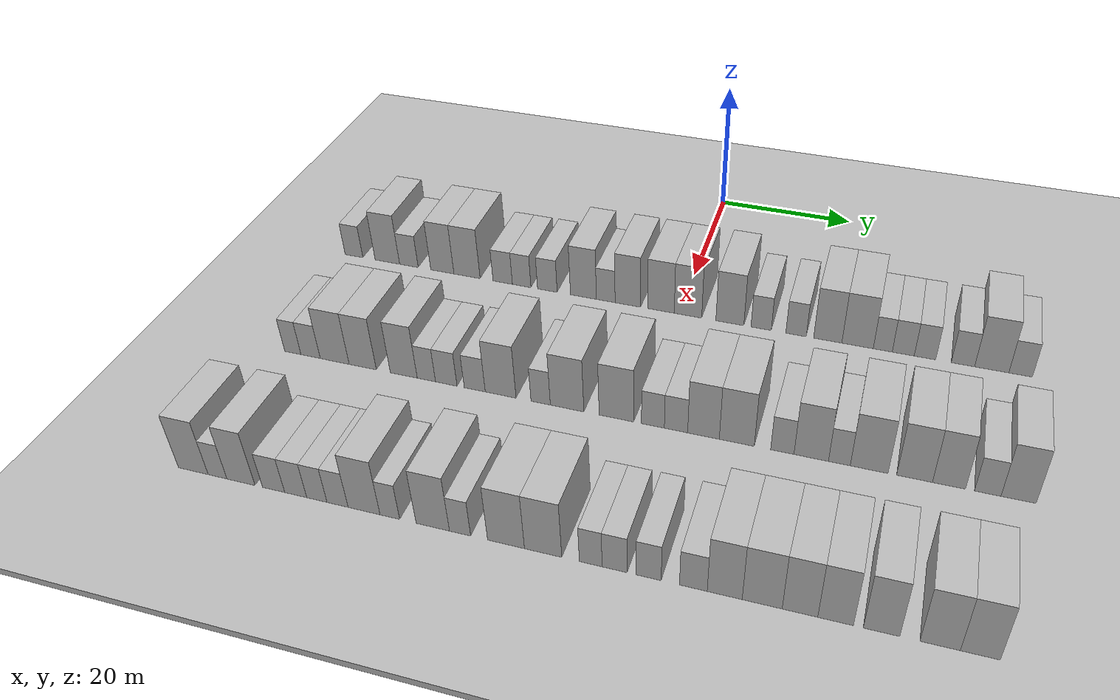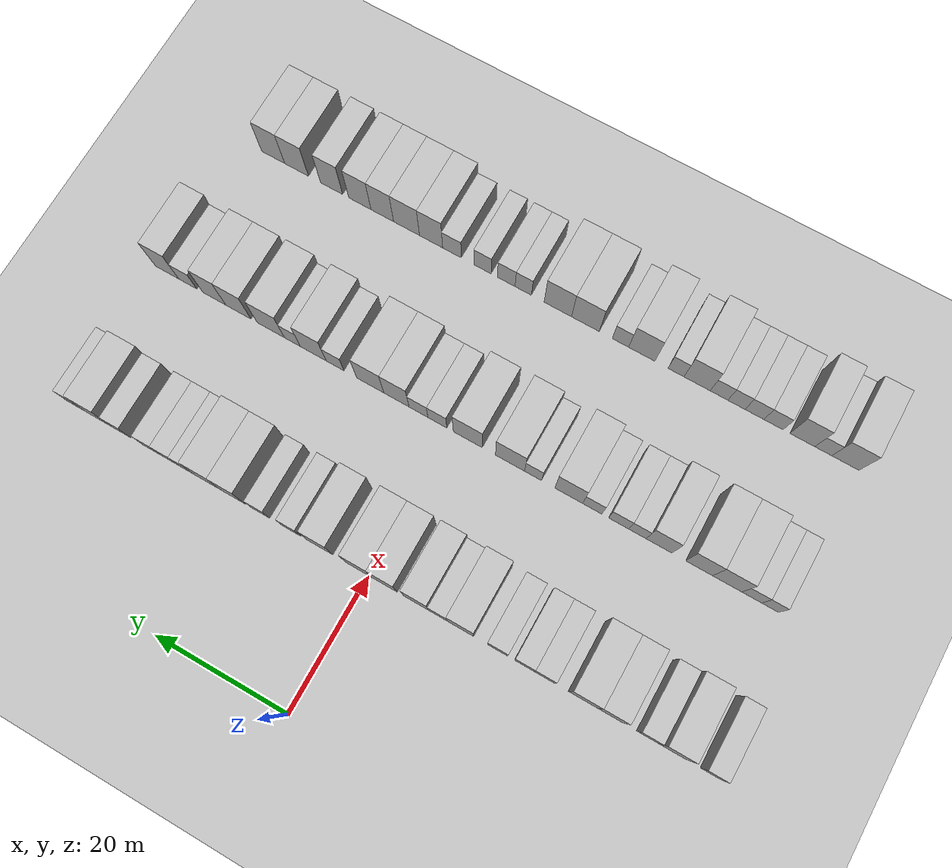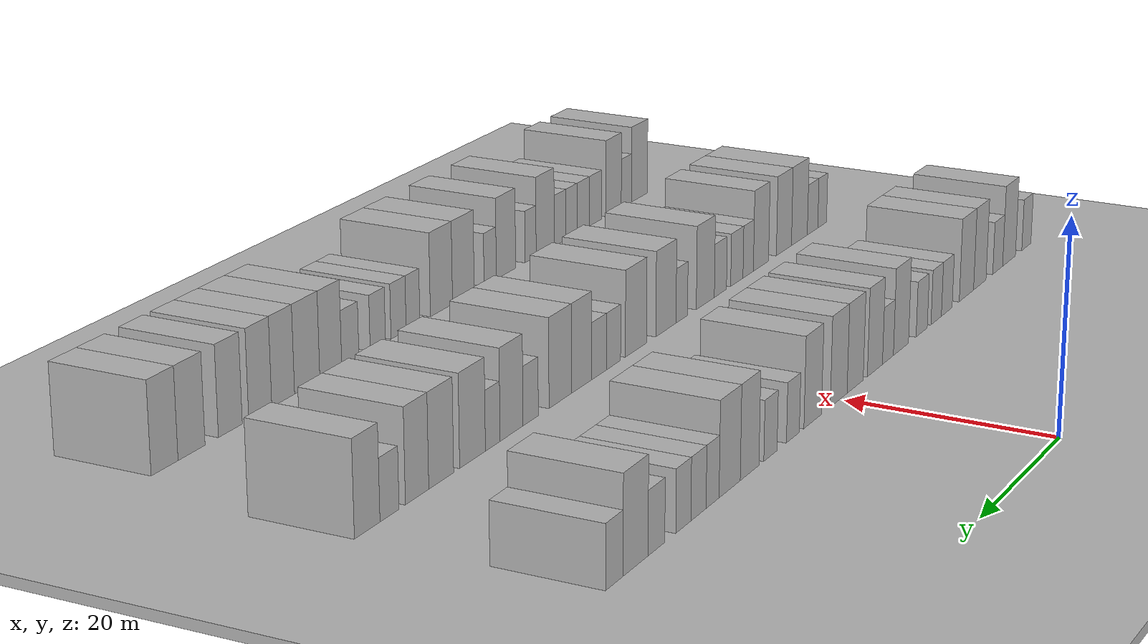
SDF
<sdf version="1.6">
 <world name="default">
  <include><name>ground_plane_1</name><uri>model://HANNAS_ground_plane</uri></include>
  <include>
   <name>ground_plane_2</name>
   <uri>model://HANNAS_ground_plane</uri>
   <pose>100 0 0  0 0 0</pose>
  </include>
  <model name="building_53">
   <static>1</static>
   <pose>25.0000 -49.5831 0 0.000000 0.000000 0.000000</pose>
   <link name="link">
    <pose>0 0 3.00 0 0 0</pose>
    <collision name="collision"><geometry><box><size>10.0000 2.9037 6.0000</size></box></geometry></collision>
    <visual name="visual">
     <cast_shadows>0</cast_shadows>
     <geometry><box><size>10.0000 2.9037 6.0000</size></box></geometry>
     <material>
      <script>
       <uri>model://HANNAS_wall/materials/scripts</uri>
       <uri>model://HANNAS_wall/materials/textures</uri>
       <name>vrc/HANNAS_wall</name>
      </script>
     </material>
    </visual>
   </link>
  </model>
  <model name="building_54">
   <static>1</static>
   <pose>25.0000 -44.1548 0 0.000000 0.000000 0.000000</pose>
   <link name="link">
    <pose>0 0 4.50 0 0 0</pose>
    <collision name="collision"><geometry><box><size>10.0000 3.9528 9.0000</size></box></geometry></collision>
    <visual name="visual">
     <cast_shadows>0</cast_shadows>
     <geometry><box><size>10.0000 3.9528 9.0000</size></box></geometry>
     <material>
      <script>
       <uri>model://HANNAS_wall/materials/scripts</uri>
       <uri>model://HANNAS_wall/materials/textures</uri>
       <name>vrc/HANNAS_wall</name>
      </script>
     </material>
    </visual>
   </link>
  </model>
  <model name="building_55">
   <static>1</static>
   <pose>25.0000 -40.6841 0 0.000000 0.000000 0.000000</pose>
   <link name="link">
    <pose>0 0 3.00 0 0 0</pose>
    <collision name="collision"><geometry><box><size>10.0000 2.9886 6.0000</size></box></geometry></collision>
    <visual name="visual">
     <cast_shadows>0</cast_shadows>
     <geometry><box><size>10.0000 2.9886 6.0000</size></box></geometry>
     <material>
      <script>
       <uri>model://HANNAS_wall/materials/scripts</uri>
       <uri>model://HANNAS_wall/materials/textures</uri>
       <name>vrc/HANNAS_wall</name>
      </script>
     </material>
    </visual>
   </link>
  </model>
  <model name="building_56">
   <static>1</static>
   <pose>25.0000 -35.3655 0 0.000000 0.000000 0.000000</pose>
   <link name="link">
    <pose>0 0 4.50 0 0 0</pose>
    <collision name="collision"><geometry><box><size>10.0000 3.6488 9.0000</size></box></geometry></collision>
    <visual name="visual">
     <cast_shadows>0</cast_shadows>
     <geometry><box><size>10.0000 3.6488 9.0000</size></box></geometry>
     <material>
      <script>
       <uri>model://HANNAS_wall/materials/scripts</uri>
       <uri>model://HANNAS_wall/materials/textures</uri>
       <name>vrc/HANNAS_wall</name>
      </script>
     </material>
    </visual>
   </link>
  </model>
  <model name="building_57">
   <static>1</static>
   <pose>25.0000 -31.4911 0 0.000000 0.000000 0.000000</pose>
   <link name="link">
    <pose>0 0 4.50 0 0 0</pose>
    <collision name="collision"><geometry><box><size>10.0000 4.1000 9.0000</size></box></geometry></collision>
    <visual name="visual">
     <cast_shadows>0</cast_shadows>
     <geometry><box><size>10.0000 4.1000 9.0000</size></box></geometry>
     <material>
      <script>
       <uri>model://HANNAS_wall/materials/scripts</uri>
       <uri>model://HANNAS_wall/materials/textures</uri>
       <name>vrc/HANNAS_wall</name>
      </script>
     </material>
    </visual>
   </link>
  </model>
  <model name="building_58">
   <static>1</static>
   <pose>25.0000 -25.9524 0 0.000000 0.000000 0.000000</pose>
   <link name="link">
    <pose>0 0 3.00 0 0 0</pose>
    <collision name="collision"><geometry><box><size>10.0000 2.9773 6.0000</size></box></geometry></collision>
    <visual name="visual">
     <cast_shadows>0</cast_shadows>
     <geometry><box><size>10.0000 2.9773 6.0000</size></box></geometry>
     <material>
      <script>
       <uri>model://HANNAS_wall/materials/scripts</uri>
       <uri>model://HANNAS_wall/materials/textures</uri>
       <name>vrc/HANNAS_wall</name>
      </script>
     </material>
    </visual>
   </link>
  </model>
  <model name="building_59">
   <static>1</static>
   <pose>25.0000 -23.0482 0 0.000000 0.000000 0.000000</pose>
   <link name="link">
    <pose>0 0 3.00 0 0 0</pose>
    <collision name="collision"><geometry><box><size>10.0000 2.8312 6.0000</size></box></geometry></collision>
    <visual name="visual">
     <cast_shadows>0</cast_shadows>
     <geometry><box><size>10.0000 2.8312 6.0000</size></box></geometry>
     <material>
      <script>
       <uri>model://HANNAS_wall/materials/scripts</uri>
       <uri>model://HANNAS_wall/materials/textures</uri>
       <name>vrc/HANNAS_wall</name>
      </script>
     </material>
    </visual>
   </link>
  </model>
  <model name="building_60">
   <static>1</static>
   <pose>25.0000 -19.1541 0 0.000000 0.000000 0.000000</pose>
   <link name="link">
    <pose>0 0 3.00 0 0 0</pose>
    <collision name="collision"><geometry><box><size>10.0000 2.9568 6.0000</size></box></geometry></collision>
    <visual name="visual">
     <cast_shadows>0</cast_shadows>
     <geometry><box><size>10.0000 2.9568 6.0000</size></box></geometry>
     <material>
      <script>
       <uri>model://HANNAS_wall/materials/scripts</uri>
       <uri>model://HANNAS_wall/materials/textures</uri>
       <name>vrc/HANNAS_wall</name>
      </script>
     </material>
    </visual>
   </link>
  </model>
  <model name="building_61">
   <static>1</static>
   <pose>25.0000 -13.7435 0 0.000000 0.000000 0.000000</pose>
   <link name="link">
    <pose>0 0 4.50 0 0 0</pose>
    <collision name="collision"><geometry><box><size>10.0000 3.8644 9.0000</size></box></geometry></collision>
    <visual name="visual">
     <cast_shadows>0</cast_shadows>
     <geometry><box><size>10.0000 3.8644 9.0000</size></box></geometry>
     <material>
      <script>
       <uri>model://HANNAS_wall/materials/scripts</uri>
       <uri>model://HANNAS_wall/materials/textures</uri>
       <name>vrc/HANNAS_wall</name>
      </script>
     </material>
    </visual>
   </link>
  </model>
  <model name="building_62">
   <static>1</static>
   <pose>25.0000 -10.4363 0 0.000000 0.000000 0.000000</pose>
   <link name="link">
    <pose>0 0 3.00 0 0 0</pose>
    <collision name="collision"><geometry><box><size>10.0000 2.7500 6.0000</size></box></geometry></collision>
    <visual name="visual">
     <cast_shadows>0</cast_shadows>
     <geometry><box><size>10.0000 2.7500 6.0000</size></box></geometry>
     <material>
      <script>
       <uri>model://HANNAS_wall/materials/scripts</uri>
       <uri>model://HANNAS_wall/materials/textures</uri>
       <name>vrc/HANNAS_wall</name>
      </script>
     </material>
    </visual>
   </link>
  </model>
  <model name="building_63">
   <static>1</static>
   <pose>25.0000 -7.2013 0 0.000000 0.000000 0.000000</pose>
   <link name="link">
    <pose>0 0 4.50 0 0 0</pose>
    <collision name="collision"><geometry><box><size>10.0000 3.7201 9.0000</size></box></geometry></collision>
    <visual name="visual">
     <cast_shadows>0</cast_shadows>
     <geometry><box><size>10.0000 3.7201 9.0000</size></box></geometry>
     <material>
      <script>
       <uri>model://HANNAS_wall/materials/scripts</uri>
       <uri>model://HANNAS_wall/materials/textures</uri>
       <name>vrc/HANNAS_wall</name>
      </script>
     </material>
    </visual>
   </link>
  </model>
  <model name="building_64">
   <static>1</static>
   <pose>25.0000 -2.4187 0 0.000000 0.000000 0.000000</pose>
   <link name="link">
    <pose>0 0 4.50 0 0 0</pose>
    <collision name="collision"><geometry><box><size>10.0000 3.8450 9.0000</size></box></geometry></collision>
    <visual name="visual">
     <cast_shadows>0</cast_shadows>
     <geometry><box><size>10.0000 3.8450 9.0000</size></box></geometry>
     <material>
      <script>
       <uri>model://HANNAS_wall/materials/scripts</uri>
       <uri>model://HANNAS_wall/materials/textures</uri>
       <name>vrc/HANNAS_wall</name>
      </script>
     </material>
    </visual>
   </link>
  </model>
  <model name="building_65">
   <static>1</static>
   <pose>25.0000 1.4582 0 0.000000 0.000000 0.000000</pose>
   <link name="link">
    <pose>0 0 4.50 0 0 0</pose>
    <collision name="collision"><geometry><box><size>10.0000 3.9089 9.0000</size></box></geometry></collision>
    <visual name="visual">
     <cast_shadows>0</cast_shadows>
     <geometry><box><size>10.0000 3.9089 9.0000</size></box></geometry>
     <material>
      <script>
       <uri>model://HANNAS_wall/materials/scripts</uri>
       <uri>model://HANNAS_wall/materials/textures</uri>
       <name>vrc/HANNAS_wall</name>
      </script>
     </material>
    </visual>
   </link>
  </model>
  <model name="building_66">
   <static>1</static>
   <pose>25.0000 7.3703 0 0.000000 0.000000 0.000000</pose>
   <link name="link">
    <pose>0 0 4.50 0 0 0</pose>
    <collision name="collision"><geometry><box><size>10.0000 3.9153 9.0000</size></box></geometry></collision>
    <visual name="visual">
     <cast_shadows>0</cast_shadows>
     <geometry><box><size>10.0000 3.9153 9.0000</size></box></geometry>
     <material>
      <script>
       <uri>model://HANNAS_wall/materials/scripts</uri>
       <uri>model://HANNAS_wall/materials/textures</uri>
       <name>vrc/HANNAS_wall</name>
      </script>
     </material>
    </visual>
   </link>
  </model>
  <model name="building_67">
   <static>1</static>
   <pose>25.0000 11.7263 0 0.000000 0.000000 0.000000</pose>
   <link name="link">
    <pose>0 0 3.00 0 0 0</pose>
    <collision name="collision"><geometry><box><size>10.0000 2.7966 6.0000</size></box></geometry></collision>
    <visual name="visual">
     <cast_shadows>0</cast_shadows>
     <geometry><box><size>10.0000 2.7966 6.0000</size></box></geometry>
     <material>
      <script>
       <uri>model://HANNAS_wall/materials/scripts</uri>
       <uri>model://HANNAS_wall/materials/textures</uri>
       <name>vrc/HANNAS_wall</name>
      </script>
     </material>
    </visual>
   </link>
  </model>
  <model name="building_68">
   <static>1</static>
   <pose>25.0000 16.5126 0 0.000000 0.000000 0.000000</pose>
   <link name="link">
    <pose>0 0 3.00 0 0 0</pose>
    <collision name="collision"><geometry><box><size>10.0000 2.7760 6.0000</size></box></geometry></collision>
    <visual name="visual">
     <cast_shadows>0</cast_shadows>
     <geometry><box><size>10.0000 2.7760 6.0000</size></box></geometry>
     <material>
      <script>
       <uri>model://HANNAS_wall/materials/scripts</uri>
       <uri>model://HANNAS_wall/materials/textures</uri>
       <name>vrc/HANNAS_wall</name>
      </script>
     </material>
    </visual>
   </link>
  </model>
  <model name="building_69">
   <static>1</static>
   <pose>25.0000 20.8025 0 0.000000 0.000000 0.000000</pose>
   <link name="link">
    <pose>0 0 4.50 0 0 0</pose>
    <collision name="collision"><geometry><box><size>10.0000 3.8038 9.0000</size></box></geometry></collision>
    <visual name="visual">
     <cast_shadows>0</cast_shadows>
     <geometry><box><size>10.0000 3.8038 9.0000</size></box></geometry>
     <material>
      <script>
       <uri>model://HANNAS_wall/materials/scripts</uri>
       <uri>model://HANNAS_wall/materials/textures</uri>
       <name>vrc/HANNAS_wall</name>
      </script>
     </material>
    </visual>
   </link>
  </model>
  <model name="building_70">
   <static>1</static>
   <pose>25.0000 24.7926 0 0.000000 0.000000 0.000000</pose>
   <link name="link">
    <pose>0 0 4.50 0 0 0</pose>
    <collision name="collision"><geometry><box><size>10.0000 4.1765 9.0000</size></box></geometry></collision>
    <visual name="visual">
     <cast_shadows>0</cast_shadows>
     <geometry><box><size>10.0000 4.1765 9.0000</size></box></geometry>
     <material>
      <script>
       <uri>model://HANNAS_wall/materials/scripts</uri>
       <uri>model://HANNAS_wall/materials/textures</uri>
       <name>vrc/HANNAS_wall</name>
      </script>
     </material>
    </visual>
   </link>
  </model>
  <model name="building_71">
   <static>1</static>
   <pose>25.0000 28.1296 0 0.000000 0.000000 0.000000</pose>
   <link name="link">
    <pose>0 0 3.00 0 0 0</pose>
    <collision name="collision"><geometry><box><size>10.0000 2.4974 6.0000</size></box></geometry></collision>
    <visual name="visual">
     <cast_shadows>0</cast_shadows>
     <geometry><box><size>10.0000 2.4974 6.0000</size></box></geometry>
     <material>
      <script>
       <uri>model://HANNAS_wall/materials/scripts</uri>
       <uri>model://HANNAS_wall/materials/textures</uri>
       <name>vrc/HANNAS_wall</name>
      </script>
     </material>
    </visual>
   </link>
  </model>
  <model name="building_72">
   <static>1</static>
   <pose>25.0000 30.8160 0 0.000000 0.000000 0.000000</pose>
   <link name="link">
    <pose>0 0 3.00 0 0 0</pose>
    <collision name="collision"><geometry><box><size>10.0000 2.8756 6.0000</size></box></geometry></collision>
    <visual name="visual">
     <cast_shadows>0</cast_shadows>
     <geometry><box><size>10.0000 2.8756 6.0000</size></box></geometry>
     <material>
      <script>
       <uri>model://HANNAS_wall/materials/scripts</uri>
       <uri>model://HANNAS_wall/materials/textures</uri>
       <name>vrc/HANNAS_wall</name>
      </script>
     </material>
    </visual>
   </link>
  </model>
  <model name="building_73">
   <static>1</static>
   <pose>25.0000 33.6465 0 0.000000 0.000000 0.000000</pose>
   <link name="link">
    <pose>0 0 3.00 0 0 0</pose>
    <collision name="collision"><geometry><box><size>10.0000 2.7855 6.0000</size></box></geometry></collision>
    <visual name="visual">
     <cast_shadows>0</cast_shadows>
     <geometry><box><size>10.0000 2.7855 6.0000</size></box></geometry>
     <material>
      <script>
       <uri>model://HANNAS_wall/materials/scripts</uri>
       <uri>model://HANNAS_wall/materials/textures</uri>
       <name>vrc/HANNAS_wall</name>
      </script>
     </material>
    </visual>
   </link>
  </model>
  <model name="building_74">
   <static>1</static>
   <pose>25.0000 38.5266 0 0.000000 0.000000 0.000000</pose>
   <link name="link">
    <pose>0 0 3.00 0 0 0</pose>
    <collision name="collision"><geometry><box><size>10.0000 2.9746 6.0000</size></box></geometry></collision>
    <visual name="visual">
     <cast_shadows>0</cast_shadows>
     <geometry><box><size>10.0000 2.9746 6.0000</size></box></geometry>
     <material>
      <script>
       <uri>model://HANNAS_wall/materials/scripts</uri>
       <uri>model://HANNAS_wall/materials/textures</uri>
       <name>vrc/HANNAS_wall</name>
      </script>
     </material>
    </visual>
   </link>
  </model>
  <model name="building_75">
   <static>1</static>
   <pose>25.0000 42.1730 0 0.000000 0.000000 0.000000</pose>
   <link name="link">
    <pose>0 0 4.50 0 0 0</pose>
    <collision name="collision"><geometry><box><size>10.0000 4.3182 9.0000</size></box></geometry></collision>
    <visual name="visual">
     <cast_shadows>0</cast_shadows>
     <geometry><box><size>10.0000 4.3182 9.0000</size></box></geometry>
     <material>
      <script>
       <uri>model://HANNAS_wall/materials/scripts</uri>
       <uri>model://HANNAS_wall/materials/textures</uri>
       <name>vrc/HANNAS_wall</name>
      </script>
     </material>
    </visual>
   </link>
  </model>
  <model name="building_76">
   <static>1</static>
   <pose>25.0000 45.8047 0 0.000000 0.000000 0.000000</pose>
   <link name="link">
    <pose>0 0 3.00 0 0 0</pose>
    <collision name="collision"><geometry><box><size>10.0000 2.9452 6.0000</size></box></geometry></collision>
    <visual name="visual">
     <cast_shadows>0</cast_shadows>
     <geometry><box><size>10.0000 2.9452 6.0000</size></box></geometry>
     <material>
      <script>
       <uri>model://HANNAS_wall/materials/scripts</uri>
       <uri>model://HANNAS_wall/materials/textures</uri>
       <name>vrc/HANNAS_wall</name>
      </script>
     </material>
    </visual>
   </link>
  </model>
  <model name="building_170">
   <static>1</static>
   <pose>47.0000 -47.0756 0 0.000000 0.000000 0.000000</pose>
   <link name="link">
    <pose>0 0 3.00 0 0 0</pose>
    <collision name="collision"><geometry><box><size>10.0000 2.4111 6.0000</size></box></geometry></collision>
    <visual name="visual">
     <cast_shadows>0</cast_shadows>
     <geometry><box><size>10.0000 2.4111 6.0000</size></box></geometry>
     <material>
      <script>
       <uri>model://HANNAS_wall/materials/scripts</uri>
       <uri>model://HANNAS_wall/materials/textures</uri>
       <name>vrc/HANNAS_wall</name>
      </script>
     </material>
    </visual>
   </link>
  </model>
  <model name="building_171">
   <static>1</static>
   <pose>47.0000 -44.4504 0 0.000000 0.000000 0.000000</pose>
   <link name="link">
    <pose>0 0 3.00 0 0 0</pose>
    <collision name="collision"><geometry><box><size>10.0000 2.8391 6.0000</size></box></geometry></collision>
    <visual name="visual">
     <cast_shadows>0</cast_shadows>
     <geometry><box><size>10.0000 2.8391 6.0000</size></box></geometry>
     <material>
      <script>
       <uri>model://HANNAS_wall/materials/scripts</uri>
       <uri>model://HANNAS_wall/materials/textures</uri>
       <name>vrc/HANNAS_wall</name>
      </script>
     </material>
    </visual>
   </link>
  </model>
  <model name="building_172">
   <static>1</static>
   <pose>47.0000 -40.9238 0 0.000000 0.000000 0.000000</pose>
   <link name="link">
    <pose>0 0 4.50 0 0 0</pose>
    <collision name="collision"><geometry><box><size>10.0000 4.2142 9.0000</size></box></geometry></collision>
    <visual name="visual">
     <cast_shadows>0</cast_shadows>
     <geometry><box><size>10.0000 4.2142 9.0000</size></box></geometry>
     <material>
      <script>
       <uri>model://HANNAS_wall/materials/scripts</uri>
       <uri>model://HANNAS_wall/materials/textures</uri>
       <name>vrc/HANNAS_wall</name>
      </script>
     </material>
    </visual>
   </link>
  </model>
  <model name="building_173">
   <static>1</static>
   <pose>47.0000 -36.8565 0 0.000000 0.000000 0.000000</pose>
   <link name="link">
    <pose>0 0 4.50 0 0 0</pose>
    <collision name="collision"><geometry><box><size>10.0000 3.9205 9.0000</size></box></geometry></collision>
    <visual name="visual">
     <cast_shadows>0</cast_shadows>
     <geometry><box><size>10.0000 3.9205 9.0000</size></box></geometry>
     <material>
      <script>
       <uri>model://HANNAS_wall/materials/scripts</uri>
       <uri>model://HANNAS_wall/materials/textures</uri>
       <name>vrc/HANNAS_wall</name>
      </script>
     </material>
    </visual>
   </link>
  </model>
  <model name="building_174">
   <static>1</static>
   <pose>47.0000 -30.9942 0 0.000000 0.000000 0.000000</pose>
   <link name="link">
    <pose>0 0 4.50 0 0 0</pose>
    <collision name="collision"><geometry><box><size>10.0000 3.8041 9.0000</size></box></geometry></collision>
    <visual name="visual">
     <cast_shadows>0</cast_shadows>
     <geometry><box><size>10.0000 3.8041 9.0000</size></box></geometry>
     <material>
      <script>
       <uri>model://HANNAS_wall/materials/scripts</uri>
       <uri>model://HANNAS_wall/materials/textures</uri>
       <name>vrc/HANNAS_wall</name>
      </script>
     </material>
    </visual>
   </link>
  </model>
  <model name="building_175">
   <static>1</static>
   <pose>47.0000 -27.8100 0 0.000000 0.000000 0.000000</pose>
   <link name="link">
    <pose>0 0 3.00 0 0 0</pose>
    <collision name="collision"><geometry><box><size>10.0000 2.5643 6.0000</size></box></geometry></collision>
    <visual name="visual">
     <cast_shadows>0</cast_shadows>
     <geometry><box><size>10.0000 2.5643 6.0000</size></box></geometry>
     <material>
      <script>
       <uri>model://HANNAS_wall/materials/scripts</uri>
       <uri>model://HANNAS_wall/materials/textures</uri>
       <name>vrc/HANNAS_wall</name>
      </script>
     </material>
    </visual>
   </link>
  </model>
  <model name="building_176">
   <static>1</static>
   <pose>47.0000 -25.0365 0 0.000000 0.000000 0.000000</pose>
   <link name="link">
    <pose>0 0 3.00 0 0 0</pose>
    <collision name="collision"><geometry><box><size>10.0000 2.9825 6.0000</size></box></geometry></collision>
    <visual name="visual">
     <cast_shadows>0</cast_shadows>
     <geometry><box><size>10.0000 2.9825 6.0000</size></box></geometry>
     <material>
      <script>
       <uri>model://HANNAS_wall/materials/scripts</uri>
       <uri>model://HANNAS_wall/materials/textures</uri>
       <name>vrc/HANNAS_wall</name>
      </script>
     </material>
    </visual>
   </link>
  </model>
  <model name="building_177">
   <static>1</static>
   <pose>47.0000 -21.1062 0 0.000000 0.000000 0.000000</pose>
   <link name="link">
    <pose>0 0 3.00 0 0 0</pose>
    <collision name="collision"><geometry><box><size>10.0000 2.8782 6.0000</size></box></geometry></collision>
    <visual name="visual">
     <cast_shadows>0</cast_shadows>
     <geometry><box><size>10.0000 2.8782 6.0000</size></box></geometry>
     <material>
      <script>
       <uri>model://HANNAS_wall/materials/scripts</uri>
       <uri>model://HANNAS_wall/materials/textures</uri>
       <name>vrc/HANNAS_wall</name>
      </script>
     </material>
    </visual>
   </link>
  </model>
  <model name="building_178">
   <static>1</static>
   <pose>47.0000 -17.5752 0 0.000000 0.000000 0.000000</pose>
   <link name="link">
    <pose>0 0 4.50 0 0 0</pose>
    <collision name="collision"><geometry><box><size>10.0000 4.1839 9.0000</size></box></geometry></collision>
    <visual name="visual">
     <cast_shadows>0</cast_shadows>
     <geometry><box><size>10.0000 4.1839 9.0000</size></box></geometry>
     <material>
      <script>
       <uri>model://HANNAS_wall/materials/scripts</uri>
       <uri>model://HANNAS_wall/materials/textures</uri>
       <name>vrc/HANNAS_wall</name>
      </script>
     </material>
    </visual>
   </link>
  </model>
  <model name="building_179">
   <static>1</static>
   <pose>47.0000 -12.1935 0 0.000000 0.000000 0.000000</pose>
   <link name="link">
    <pose>0 0 3.00 0 0 0</pose>
    <collision name="collision"><geometry><box><size>10.0000 2.5794 6.0000</size></box></geometry></collision>
    <visual name="visual">
     <cast_shadows>0</cast_shadows>
     <geometry><box><size>10.0000 2.5794 6.0000</size></box></geometry>
     <material>
      <script>
       <uri>model://HANNAS_wall/materials/scripts</uri>
       <uri>model://HANNAS_wall/materials/textures</uri>
       <name>vrc/HANNAS_wall</name>
      </script>
     </material>
    </visual>
   </link>
  </model>
  <model name="building_180">
   <static>1</static>
   <pose>47.0000 -8.6944 0 0.000000 0.000000 0.000000</pose>
   <link name="link">
    <pose>0 0 4.50 0 0 0</pose>
    <collision name="collision"><geometry><box><size>10.0000 4.4188 9.0000</size></box></geometry></collision>
    <visual name="visual">
     <cast_shadows>0</cast_shadows>
     <geometry><box><size>10.0000 4.4188 9.0000</size></box></geometry>
     <material>
      <script>
       <uri>model://HANNAS_wall/materials/scripts</uri>
       <uri>model://HANNAS_wall/materials/textures</uri>
       <name>vrc/HANNAS_wall</name>
      </script>
     </material>
    </visual>
   </link>
  </model>
  <model name="building_181">
   <static>1</static>
   <pose>47.0000 -2.2546 0 0.000000 0.000000 0.000000</pose>
   <link name="link">
    <pose>0 0 4.50 0 0 0</pose>
    <collision name="collision"><geometry><box><size>10.0000 4.4609 9.0000</size></box></geometry></collision>
    <visual name="visual">
     <cast_shadows>0</cast_shadows>
     <geometry><box><size>10.0000 4.4609 9.0000</size></box></geometry>
     <material>
      <script>
       <uri>model://HANNAS_wall/materials/scripts</uri>
       <uri>model://HANNAS_wall/materials/textures</uri>
       <name>vrc/HANNAS_wall</name>
      </script>
     </material>
    </visual>
   </link>
  </model>
  <model name="building_182">
   <static>1</static>
   <pose>47.0000 2.4303 0 0.000000 0.000000 0.000000</pose>
   <link name="link">
    <pose>0 0 3.00 0 0 0</pose>
    <collision name="collision"><geometry><box><size>10.0000 2.9088 6.0000</size></box></geometry></collision>
    <visual name="visual">
     <cast_shadows>0</cast_shadows>
     <geometry><box><size>10.0000 2.9088 6.0000</size></box></geometry>
     <material>
      <script>
       <uri>model://HANNAS_wall/materials/scripts</uri>
       <uri>model://HANNAS_wall/materials/textures</uri>
       <name>vrc/HANNAS_wall</name>
      </script>
     </material>
    </visual>
   </link>
  </model>
  <model name="building_183">
   <static>1</static>
   <pose>47.0000 5.3531 0 0.000000 0.000000 0.000000</pose>
   <link name="link">
    <pose>0 0 3.00 0 0 0</pose>
    <collision name="collision"><geometry><box><size>10.0000 2.9368 6.0000</size></box></geometry></collision>
    <visual name="visual">
     <cast_shadows>0</cast_shadows>
     <geometry><box><size>10.0000 2.9368 6.0000</size></box></geometry>
     <material>
      <script>
       <uri>model://HANNAS_wall/materials/scripts</uri>
       <uri>model://HANNAS_wall/materials/textures</uri>
       <name>vrc/HANNAS_wall</name>
      </script>
     </material>
    </visual>
   </link>
  </model>
  <model name="building_184">
   <static>1</static>
   <pose>47.0000 8.7923 0 0.000000 0.000000 0.000000</pose>
   <link name="link">
    <pose>0 0 4.50 0 0 0</pose>
    <collision name="collision"><geometry><box><size>10.0000 3.9415 9.0000</size></box></geometry></collision>
    <visual name="visual">
     <cast_shadows>0</cast_shadows>
     <geometry><box><size>10.0000 3.9415 9.0000</size></box></geometry>
     <material>
      <script>
       <uri>model://HANNAS_wall/materials/scripts</uri>
       <uri>model://HANNAS_wall/materials/textures</uri>
       <name>vrc/HANNAS_wall</name>
      </script>
     </material>
    </visual>
   </link>
  </model>
  <model name="building_185">
   <static>1</static>
   <pose>47.0000 12.9120 0 0.000000 0.000000 0.000000</pose>
   <link name="link">
    <pose>0 0 4.50 0 0 0</pose>
    <collision name="collision"><geometry><box><size>10.0000 4.2980 9.0000</size></box></geometry></collision>
    <visual name="visual">
     <cast_shadows>0</cast_shadows>
     <geometry><box><size>10.0000 4.2980 9.0000</size></box></geometry>
     <material>
      <script>
       <uri>model://HANNAS_wall/materials/scripts</uri>
       <uri>model://HANNAS_wall/materials/textures</uri>
       <name>vrc/HANNAS_wall</name>
      </script>
     </material>
    </visual>
   </link>
  </model>
  <model name="building_186">
   <static>1</static>
   <pose>47.0000 18.4659 0 0.000000 0.000000 0.000000</pose>
   <link name="link">
    <pose>0 0 3.00 0 0 0</pose>
    <collision name="collision"><geometry><box><size>10.0000 2.8098 6.0000</size></box></geometry></collision>
    <visual name="visual">
     <cast_shadows>0</cast_shadows>
     <geometry><box><size>10.0000 2.8098 6.0000</size></box></geometry>
     <material>
      <script>
       <uri>model://HANNAS_wall/materials/scripts</uri>
       <uri>model://HANNAS_wall/materials/textures</uri>
       <name>vrc/HANNAS_wall</name>
      </script>
     </material>
    </visual>
   </link>
  </model>
  <model name="building_187">
   <static>1</static>
   <pose>47.0000 21.9285 0 0.000000 0.000000 0.000000</pose>
   <link name="link">
    <pose>0 0 4.50 0 0 0</pose>
    <collision name="collision"><geometry><box><size>10.0000 4.1155 9.0000</size></box></geometry></collision>
    <visual name="visual">
     <cast_shadows>0</cast_shadows>
     <geometry><box><size>10.0000 4.1155 9.0000</size></box></geometry>
     <material>
      <script>
       <uri>model://HANNAS_wall/materials/scripts</uri>
       <uri>model://HANNAS_wall/materials/textures</uri>
       <name>vrc/HANNAS_wall</name>
      </script>
     </material>
    </visual>
   </link>
  </model>
  <model name="building_188">
   <static>1</static>
   <pose>47.0000 25.2718 0 0.000000 0.000000 0.000000</pose>
   <link name="link">
    <pose>0 0 3.00 0 0 0</pose>
    <collision name="collision"><geometry><box><size>10.0000 2.5711 6.0000</size></box></geometry></collision>
    <visual name="visual">
     <cast_shadows>0</cast_shadows>
     <geometry><box><size>10.0000 2.5711 6.0000</size></box></geometry>
     <material>
      <script>
       <uri>model://HANNAS_wall/materials/scripts</uri>
       <uri>model://HANNAS_wall/materials/textures</uri>
       <name>vrc/HANNAS_wall</name>
      </script>
     </material>
    </visual>
   </link>
  </model>
  <model name="building_189">
   <static>1</static>
   <pose>47.0000 28.7615 0 0.000000 0.000000 0.000000</pose>
   <link name="link">
    <pose>0 0 4.50 0 0 0</pose>
    <collision name="collision"><geometry><box><size>10.0000 4.4083 9.0000</size></box></geometry></collision>
    <visual name="visual">
     <cast_shadows>0</cast_shadows>
     <geometry><box><size>10.0000 4.4083 9.0000</size></box></geometry>
     <material>
      <script>
       <uri>model://HANNAS_wall/materials/scripts</uri>
       <uri>model://HANNAS_wall/materials/textures</uri>
       <name>vrc/HANNAS_wall</name>
      </script>
     </material>
    </visual>
   </link>
  </model>
  <model name="building_190">
   <static>1</static>
   <pose>47.0000 34.0150 0 0.000000 0.000000 0.000000</pose>
   <link name="link">
    <pose>0 0 4.50 0 0 0</pose>
    <collision name="collision"><geometry><box><size>10.0000 4.0985 9.0000</size></box></geometry></collision>
    <visual name="visual">
     <cast_shadows>0</cast_shadows>
     <geometry><box><size>10.0000 4.0985 9.0000</size></box></geometry>
     <material>
      <script>
       <uri>model://HANNAS_wall/materials/scripts</uri>
       <uri>model://HANNAS_wall/materials/textures</uri>
       <name>vrc/HANNAS_wall</name>
      </script>
     </material>
    </visual>
   </link>
  </model>
  <model name="building_191">
   <static>1</static>
   <pose>47.0000 37.9345 0 0.000000 0.000000 0.000000</pose>
   <link name="link">
    <pose>0 0 4.50 0 0 0</pose>
    <collision name="collision"><geometry><box><size>10.0000 3.7406 9.0000</size></box></geometry></collision>
    <visual name="visual">
     <cast_shadows>0</cast_shadows>
     <geometry><box><size>10.0000 3.7406 9.0000</size></box></geometry>
     <material>
      <script>
       <uri>model://HANNAS_wall/materials/scripts</uri>
       <uri>model://HANNAS_wall/materials/textures</uri>
       <name>vrc/HANNAS_wall</name>
      </script>
     </material>
    </visual>
   </link>
  </model>
  <model name="building_192">
   <static>1</static>
   <pose>47.0000 42.2811 0 0.000000 0.000000 0.000000</pose>
   <link name="link">
    <pose>0 0 3.00 0 0 0</pose>
    <collision name="collision"><geometry><box><size>10.0000 2.9525 6.0000</size></box></geometry></collision>
    <visual name="visual">
     <cast_shadows>0</cast_shadows>
     <geometry><box><size>10.0000 2.9525 6.0000</size></box></geometry>
     <material>
      <script>
       <uri>model://HANNAS_wall/materials/scripts</uri>
       <uri>model://HANNAS_wall/materials/textures</uri>
       <name>vrc/HANNAS_wall</name>
      </script>
     </material>
    </visual>
   </link>
  </model>
  <model name="building_193">
   <static>1</static>
   <pose>47.0000 45.6931 0 0.000000 0.000000 0.000000</pose>
   <link name="link">
    <pose>0 0 4.50 0 0 0</pose>
    <collision name="collision"><geometry><box><size>10.0000 3.8716 9.0000</size></box></geometry></collision>
    <visual name="visual">
     <cast_shadows>0</cast_shadows>
     <geometry><box><size>10.0000 3.8716 9.0000</size></box></geometry>
     <material>
      <script>
       <uri>model://HANNAS_wall/materials/scripts</uri>
       <uri>model://HANNAS_wall/materials/textures</uri>
       <name>vrc/HANNAS_wall</name>
      </script>
     </material>
    </visual>
   </link>
  </model>
  <model name="building_291">
   <static>1</static>
   <pose>69.0000 -47.4714 0 0.000000 0.000000 0.000000</pose>
   <link name="link">
    <pose>0 0 4.50 0 0 0</pose>
    <collision name="collision"><geometry><box><size>10.0000 3.9888 9.0000</size></box></geometry></collision>
    <visual name="visual">
     <cast_shadows>0</cast_shadows>
     <geometry><box><size>10.0000 3.9888 9.0000</size></box></geometry>
     <material>
      <script>
       <uri>model://HANNAS_wall/materials/scripts</uri>
       <uri>model://HANNAS_wall/materials/textures</uri>
       <name>vrc/HANNAS_wall</name>
      </script>
     </material>
    </visual>
   </link>
  </model>
  <model name="building_292">
   <static>1</static>
   <pose>69.0000 -44.2291 0 0.000000 0.000000 0.000000</pose>
   <link name="link">
    <pose>0 0 3.00 0 0 0</pose>
    <collision name="collision"><geometry><box><size>10.0000 2.4960 6.0000</size></box></geometry></collision>
    <visual name="visual">
     <cast_shadows>0</cast_shadows>
     <geometry><box><size>10.0000 2.4960 6.0000</size></box></geometry>
     <material>
      <script>
       <uri>model://HANNAS_wall/materials/scripts</uri>
       <uri>model://HANNAS_wall/materials/textures</uri>
       <name>vrc/HANNAS_wall</name>
      </script>
     </material>
    </visual>
   </link>
  </model>
  <model name="building_293">
   <static>1</static>
   <pose>69.0000 -41.1395 0 0.000000 0.000000 0.000000</pose>
   <link name="link">
    <pose>0 0 4.50 0 0 0</pose>
    <collision name="collision"><geometry><box><size>10.0000 3.6831 9.0000</size></box></geometry></collision>
    <visual name="visual">
     <cast_shadows>0</cast_shadows>
     <geometry><box><size>10.0000 3.6831 9.0000</size></box></geometry>
     <material>
      <script>
       <uri>model://HANNAS_wall/materials/scripts</uri>
       <uri>model://HANNAS_wall/materials/textures</uri>
       <name>vrc/HANNAS_wall</name>
      </script>
     </material>
    </visual>
   </link>
  </model>
  <model name="building_294">
   <static>1</static>
   <pose>69.0000 -36.8647 0 0.000000 0.000000 0.000000</pose>
   <link name="link">
    <pose>0 0 3.00 0 0 0</pose>
    <collision name="collision"><geometry><box><size>10.0000 2.8667 6.0000</size></box></geometry></collision>
    <visual name="visual">
     <cast_shadows>0</cast_shadows>
     <geometry><box><size>10.0000 2.8667 6.0000</size></box></geometry>
     <material>
      <script>
       <uri>model://HANNAS_wall/materials/scripts</uri>
       <uri>model://HANNAS_wall/materials/textures</uri>
       <name>vrc/HANNAS_wall</name>
      </script>
     </material>
    </visual>
   </link>
  </model>
  <model name="building_295">
   <static>1</static>
   <pose>69.0000 -34.0193 0 0.000000 0.000000 0.000000</pose>
   <link name="link">
    <pose>0 0 3.00 0 0 0</pose>
    <collision name="collision"><geometry><box><size>10.0000 2.8241 6.0000</size></box></geometry></collision>
    <visual name="visual">
     <cast_shadows>0</cast_shadows>
     <geometry><box><size>10.0000 2.8241 6.0000</size></box></geometry>
     <material>
      <script>
       <uri>model://HANNAS_wall/materials/scripts</uri>
       <uri>model://HANNAS_wall/materials/textures</uri>
       <name>vrc/HANNAS_wall</name>
      </script>
     </material>
    </visual>
   </link>
  </model>
  <model name="building_296">
   <static>1</static>
   <pose>69.0000 -31.3182 0 0.000000 0.000000 0.000000</pose>
   <link name="link">
    <pose>0 0 3.00 0 0 0</pose>
    <collision name="collision"><geometry><box><size>10.0000 2.5780 6.0000</size></box></geometry></collision>
    <visual name="visual">
     <cast_shadows>0</cast_shadows>
     <geometry><box><size>10.0000 2.5780 6.0000</size></box></geometry>
     <material>
      <script>
       <uri>model://HANNAS_wall/materials/scripts</uri>
       <uri>model://HANNAS_wall/materials/textures</uri>
       <name>vrc/HANNAS_wall</name>
      </script>
     </material>
    </visual>
   </link>
  </model>
  <model name="building_297">
   <static>1</static>
   <pose>69.0000 -28.7033 0 0.000000 0.000000 0.000000</pose>
   <link name="link">
    <pose>0 0 3.00 0 0 0</pose>
    <collision name="collision"><geometry><box><size>10.0000 2.6519 6.0000</size></box></geometry></collision>
    <visual name="visual">
     <cast_shadows>0</cast_shadows>
     <geometry><box><size>10.0000 2.6519 6.0000</size></box></geometry>
     <material>
      <script>
       <uri>model://HANNAS_wall/materials/scripts</uri>
       <uri>model://HANNAS_wall/materials/textures</uri>
       <name>vrc/HANNAS_wall</name>
      </script>
     </material>
    </visual>
   </link>
  </model>
  <model name="building_298">
   <static>1</static>
   <pose>69.0000 -25.3860 0 0.000000 0.000000 0.000000</pose>
   <link name="link">
    <pose>0 0 4.50 0 0 0</pose>
    <collision name="collision"><geometry><box><size>10.0000 3.9826 9.0000</size></box></geometry></collision>
    <visual name="visual">
     <cast_shadows>0</cast_shadows>
     <geometry><box><size>10.0000 3.9826 9.0000</size></box></geometry>
     <material>
      <script>
       <uri>model://HANNAS_wall/materials/scripts</uri>
       <uri>model://HANNAS_wall/materials/textures</uri>
       <name>vrc/HANNAS_wall</name>
      </script>
     </material>
    </visual>
   </link>
  </model>
  <model name="building_299">
   <static>1</static>
   <pose>69.0000 -22.1855 0 0.000000 0.000000 0.000000</pose>
   <link name="link">
    <pose>0 0 3.00 0 0 0</pose>
    <collision name="collision"><geometry><box><size>10.0000 2.4184 6.0000</size></box></geometry></collision>
    <visual name="visual">
     <cast_shadows>0</cast_shadows>
     <geometry><box><size>10.0000 2.4184 6.0000</size></box></geometry>
     <material>
      <script>
       <uri>model://HANNAS_wall/materials/scripts</uri>
       <uri>model://HANNAS_wall/materials/textures</uri>
       <name>vrc/HANNAS_wall</name>
      </script>
     </material>
    </visual>
   </link>
  </model>
  <model name="building_300">
   <static>1</static>
   <pose>69.0000 -16.9565 0 0.000000 0.000000 0.000000</pose>
   <link name="link">
    <pose>0 0 4.50 0 0 0</pose>
    <collision name="collision"><geometry><box><size>10.0000 4.0397 9.0000</size></box></geometry></collision>
    <visual name="visual">
     <cast_shadows>0</cast_shadows>
     <geometry><box><size>10.0000 4.0397 9.0000</size></box></geometry>
     <material>
      <script>
       <uri>model://HANNAS_wall/materials/scripts</uri>
       <uri>model://HANNAS_wall/materials/textures</uri>
       <name>vrc/HANNAS_wall</name>
      </script>
     </material>
    </visual>
   </link>
  </model>
  <model name="building_301">
   <static>1</static>
   <pose>69.0000 -13.6727 0 0.000000 0.000000 0.000000</pose>
   <link name="link">
    <pose>0 0 3.00 0 0 0</pose>
    <collision name="collision"><geometry><box><size>10.0000 2.5279 6.0000</size></box></geometry></collision>
    <visual name="visual">
     <cast_shadows>0</cast_shadows>
     <geometry><box><size>10.0000 2.5279 6.0000</size></box></geometry>
     <material>
      <script>
       <uri>model://HANNAS_wall/materials/scripts</uri>
       <uri>model://HANNAS_wall/materials/textures</uri>
       <name>vrc/HANNAS_wall</name>
      </script>
     </material>
    </visual>
   </link>
  </model>
  <model name="building_302">
   <static>1</static>
   <pose>69.0000 -8.2494 0 0.000000 0.000000 0.000000</pose>
   <link name="link">
    <pose>0 0 4.50 0 0 0</pose>
    <collision name="collision"><geometry><box><size>10.0000 4.3187 9.0000</size></box></geometry></collision>
    <visual name="visual">
     <cast_shadows>0</cast_shadows>
     <geometry><box><size>10.0000 4.3187 9.0000</size></box></geometry>
     <material>
      <script>
       <uri>model://HANNAS_wall/materials/scripts</uri>
       <uri>model://HANNAS_wall/materials/textures</uri>
       <name>vrc/HANNAS_wall</name>
      </script>
     </material>
    </visual>
   </link>
  </model>
  <model name="building_303">
   <static>1</static>
   <pose>69.0000 -3.9411 0 0.000000 0.000000 0.000000</pose>
   <link name="link">
    <pose>0 0 4.50 0 0 0</pose>
    <collision name="collision"><geometry><box><size>10.0000 4.2979 9.0000</size></box></geometry></collision>
    <visual name="visual">
     <cast_shadows>0</cast_shadows>
     <geometry><box><size>10.0000 4.2979 9.0000</size></box></geometry>
     <material>
      <script>
       <uri>model://HANNAS_wall/materials/scripts</uri>
       <uri>model://HANNAS_wall/materials/textures</uri>
       <name>vrc/HANNAS_wall</name>
      </script>
     </material>
    </visual>
   </link>
  </model>
  <model name="building_304">
   <static>1</static>
   <pose>69.0000 1.4948 0 0.000000 0.000000 0.000000</pose>
   <link name="link">
    <pose>0 0 3.00 0 0 0</pose>
    <collision name="collision"><geometry><box><size>10.0000 2.5739 6.0000</size></box></geometry></collision>
    <visual name="visual">
     <cast_shadows>0</cast_shadows>
     <geometry><box><size>10.0000 2.5739 6.0000</size></box></geometry>
     <material>
      <script>
       <uri>model://HANNAS_wall/materials/scripts</uri>
       <uri>model://HANNAS_wall/materials/textures</uri>
       <name>vrc/HANNAS_wall</name>
      </script>
     </material>
    </visual>
   </link>
  </model>
  <model name="building_305">
   <static>1</static>
   <pose>69.0000 4.1797 0 0.000000 0.000000 0.000000</pose>
   <link name="link">
    <pose>0 0 3.00 0 0 0</pose>
    <collision name="collision"><geometry><box><size>10.0000 2.7959 6.0000</size></box></geometry></collision>
    <visual name="visual">
     <cast_shadows>0</cast_shadows>
     <geometry><box><size>10.0000 2.7959 6.0000</size></box></geometry>
     <material>
      <script>
       <uri>model://HANNAS_wall/materials/scripts</uri>
       <uri>model://HANNAS_wall/materials/textures</uri>
       <name>vrc/HANNAS_wall</name>
      </script>
     </material>
    </visual>
   </link>
  </model>
  <model name="building_306">
   <static>1</static>
   <pose>69.0000 7.9565 0 0.000000 0.000000 0.000000</pose>
   <link name="link">
    <pose>0 0 3.00 0 0 0</pose>
    <collision name="collision"><geometry><box><size>10.0000 2.7578 6.0000</size></box></geometry></collision>
    <visual name="visual">
     <cast_shadows>0</cast_shadows>
     <geometry><box><size>10.0000 2.7578 6.0000</size></box></geometry>
     <material>
      <script>
       <uri>model://HANNAS_wall/materials/scripts</uri>
       <uri>model://HANNAS_wall/materials/textures</uri>
       <name>vrc/HANNAS_wall</name>
      </script>
     </material>
    </visual>
   </link>
  </model>
  <model name="building_307">
   <static>1</static>
   <pose>69.0000 12.8339 0 0.000000 0.000000 0.000000</pose>
   <link name="link">
    <pose>0 0 3.00 0 0 0</pose>
    <collision name="collision"><geometry><box><size>10.0000 2.9971 6.0000</size></box></geometry></collision>
    <visual name="visual">
     <cast_shadows>0</cast_shadows>
     <geometry><box><size>10.0000 2.9971 6.0000</size></box></geometry>
     <material>
      <script>
       <uri>model://HANNAS_wall/materials/scripts</uri>
       <uri>model://HANNAS_wall/materials/textures</uri>
       <name>vrc/HANNAS_wall</name>
      </script>
     </material>
    </visual>
   </link>
  </model>
  <model name="building_308">
   <static>1</static>
   <pose>69.0000 16.2018 0 0.000000 0.000000 0.000000</pose>
   <link name="link">
    <pose>0 0 4.50 0 0 0</pose>
    <collision name="collision"><geometry><box><size>10.0000 3.7387 9.0000</size></box></geometry></collision>
    <visual name="visual">
     <cast_shadows>0</cast_shadows>
     <geometry><box><size>10.0000 3.7387 9.0000</size></box></geometry>
     <material>
      <script>
       <uri>model://HANNAS_wall/materials/scripts</uri>
       <uri>model://HANNAS_wall/materials/textures</uri>
       <name>vrc/HANNAS_wall</name>
      </script>
     </material>
    </visual>
   </link>
  </model>
  <model name="building_309">
   <static>1</static>
   <pose>69.0000 20.1738 0 0.000000 0.000000 0.000000</pose>
   <link name="link">
    <pose>0 0 4.50 0 0 0</pose>
    <collision name="collision"><geometry><box><size>10.0000 4.2053 9.0000</size></box></geometry></collision>
    <visual name="visual">
     <cast_shadows>0</cast_shadows>
     <geometry><box><size>10.0000 4.2053 9.0000</size></box></geometry>
     <material>
      <script>
       <uri>model://HANNAS_wall/materials/scripts</uri>
       <uri>model://HANNAS_wall/materials/textures</uri>
       <name>vrc/HANNAS_wall</name>
      </script>
     </material>
    </visual>
   </link>
  </model>
  <model name="building_310">
   <static>1</static>
   <pose>69.0000 24.1220 0 0.000000 0.000000 0.000000</pose>
   <link name="link">
    <pose>0 0 4.50 0 0 0</pose>
    <collision name="collision"><geometry><box><size>10.0000 3.6912 9.0000</size></box></geometry></collision>
    <visual name="visual">
     <cast_shadows>0</cast_shadows>
     <geometry><box><size>10.0000 3.6912 9.0000</size></box></geometry>
     <material>
      <script>
       <uri>model://HANNAS_wall/materials/scripts</uri>
       <uri>model://HANNAS_wall/materials/textures</uri>
       <name>vrc/HANNAS_wall</name>
      </script>
     </material>
    </visual>
   </link>
  </model>
  <model name="building_311">
   <static>1</static>
   <pose>69.0000 27.7928 0 0.000000 0.000000 0.000000</pose>
   <link name="link">
    <pose>0 0 4.50 0 0 0</pose>
    <collision name="collision"><geometry><box><size>10.0000 3.6505 9.0000</size></box></geometry></collision>
    <visual name="visual">
     <cast_shadows>0</cast_shadows>
     <geometry><box><size>10.0000 3.6505 9.0000</size></box></geometry>
     <material>
      <script>
       <uri>model://HANNAS_wall/materials/scripts</uri>
       <uri>model://HANNAS_wall/materials/textures</uri>
       <name>vrc/HANNAS_wall</name>
      </script>
     </material>
    </visual>
   </link>
  </model>
  <model name="building_312">
   <static>1</static>
   <pose>69.0000 32.4469 0 0.000000 0.000000 0.000000</pose>
   <link name="link">
    <pose>0 0 4.50 0 0 0</pose>
    <collision name="collision"><geometry><box><size>10.0000 3.6576 9.0000</size></box></geometry></collision>
    <visual name="visual">
     <cast_shadows>0</cast_shadows>
     <geometry><box><size>10.0000 3.6576 9.0000</size></box></geometry>
     <material>
      <script>
       <uri>model://HANNAS_wall/materials/scripts</uri>
       <uri>model://HANNAS_wall/materials/textures</uri>
       <name>vrc/HANNAS_wall</name>
      </script>
     </material>
    </visual>
   </link>
  </model>
  <model name="building_313">
   <static>1</static>
   <pose>69.0000 38.2616 0 0.000000 0.000000 0.000000</pose>
   <link name="link">
    <pose>0 0 4.50 0 0 0</pose>
    <collision name="collision"><geometry><box><size>10.0000 3.9719 9.0000</size></box></geometry></collision>
    <visual name="visual">
     <cast_shadows>0</cast_shadows>
     <geometry><box><size>10.0000 3.9719 9.0000</size></box></geometry>
     <material>
      <script>
       <uri>model://HANNAS_wall/materials/scripts</uri>
       <uri>model://HANNAS_wall/materials/textures</uri>
       <name>vrc/HANNAS_wall</name>
      </script>
     </material>
    </visual>
   </link>
  </model>
  <model name="building_314">
   <static>1</static>
   <pose>69.0000 42.1756 0 0.000000 0.000000 0.000000</pose>
   <link name="link">
    <pose>0 0 4.50 0 0 0</pose>
    <collision name="collision"><geometry><box><size>10.0000 3.8560 9.0000</size></box></geometry></collision>
    <visual name="visual">
     <cast_shadows>0</cast_shadows>
     <geometry><box><size>10.0000 3.8560 9.0000</size></box></geometry>
     <material>
      <script>
       <uri>model://HANNAS_wall/materials/scripts</uri>
       <uri>model://HANNAS_wall/materials/textures</uri>
       <name>vrc/HANNAS_wall</name>
      </script>
     </material>
    </visual>
   </link>
  </model>
 </world>
</sdf>
